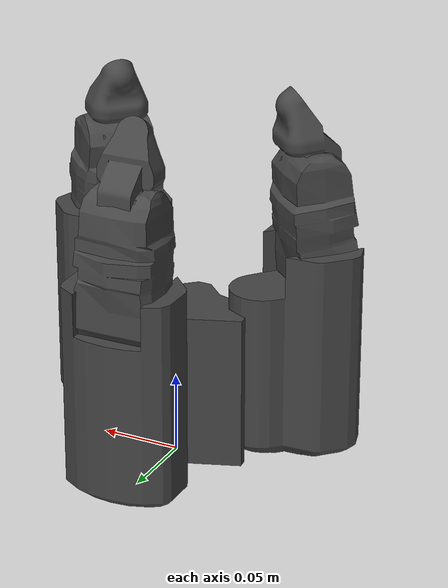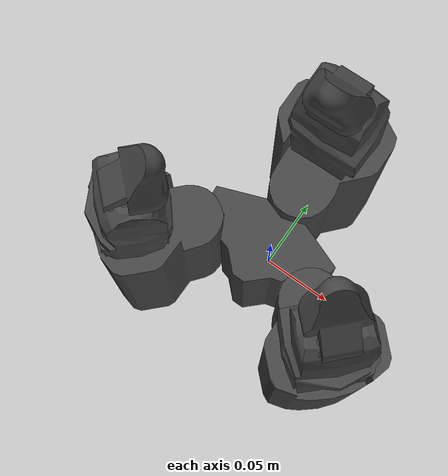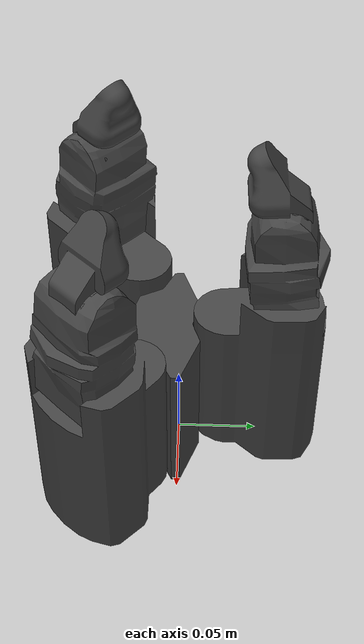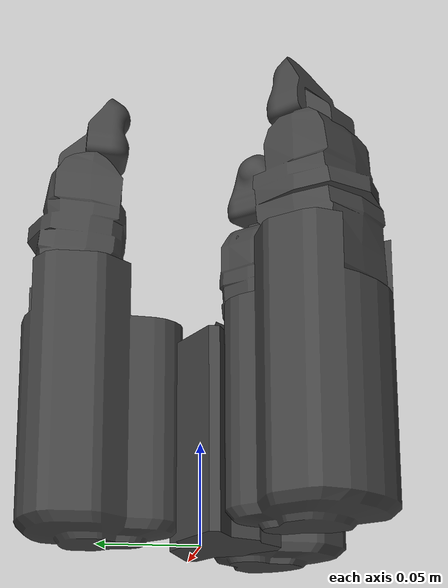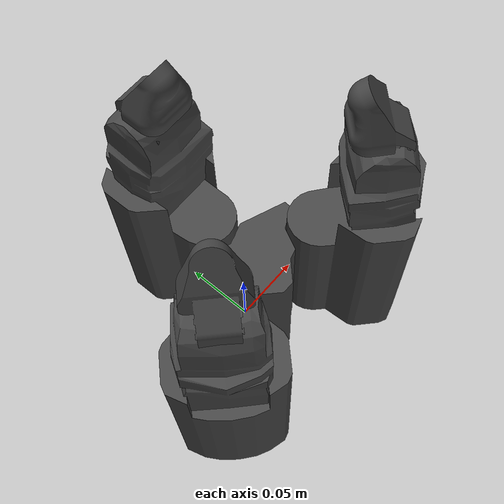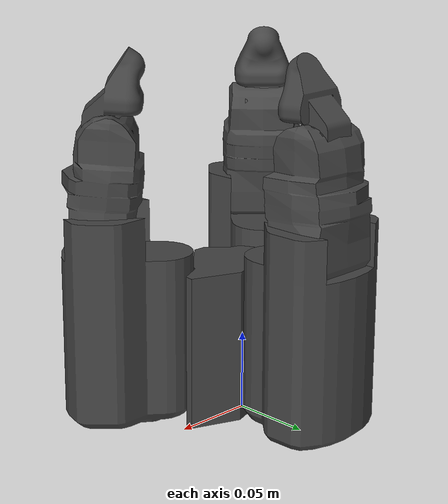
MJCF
<mujoco model="hand_H_v2">
    <compiler angle="radian" meshdir="meshes/visual/" texturedir="textures/" />
    <option impratio="20" tolerance="1e-10" iterations="10" />
    <size njmax="600" nconmax="150" nstack="300000" />
    <asset>
        <mesh name="palm_link_col" file="palm_link_col.stl" />
        <mesh name="finger_base_link_col" file="finger_base_link_col.stl" />
        <mesh name="finger_prox_link_col" file="finger_prox_link_col.stl" />
        <mesh name="finger_dist_link" file="finger_dist_link.stl" />
    </asset>
    <worldbody>
        <body name="H0_wrist_attach" pos="0 0 0">
            <inertial pos="0 0 0" mass="0" diaginertia="0 0 0" />
            <body name="H0_base_link" pos="0 0 -0.0005">
                <inertial pos="9.45256e-05 -0.00865108 0.0485" quat="0.707107 0 0 0.707107" mass="0.275316" diaginertia="0.0003223 0.000255715 0.000146273" />
                <geom type="mesh" rgba="0.267 0.267 0.267 1" mesh="palm_link_col" friction="1 0.05 0.01" condim="4" margin="0.0005" contype="1" conaffinity="1"/>
                <body name="H0_insert_F0" pos="-0.045 -0.025981 0" quat="0.382681 0 0 0.923881">
                    <inertial pos="-0.045 -0.025981 0" quat="0.382681 0 0 0.923881" mass="0" diaginertia="0 0 0" />
                    <body name="H0_F0_palm_link" pos="0 0 0">
                        <inertial pos="-0.00681802 -0.0094702 0.067588" quat="0.992601 0.0892342 0.0144943 -0.0810556" mass="0.095" diaginertia="2.7996e-05 2.73461e-05 9.27404e-06" />
                        <body name="H0_F0_base_link" pos="0 0 0.00016528" quat="0.999937 0 0 0.0112008">
                            <inertial pos="3.29175e-05 0.0257198 0.0640745" quat="0.999447 -0.032655 0.000557149 0.0061748" mass="0.482887" diaginertia="0.000750982 0.000728478 0.00032531" />
                            <joint name="H0_F0J0" pos="0 0 0" axis="0 0 1" limited="true" range="-0.785398 0.785398" damping="0.5" armature="0.005" margin="0.01" frictionloss="0.001"/>
                            <geom type="mesh" rgba="0.267 0.267 0.267 1" mesh="finger_base_link_col" friction="1 0.05 0.01" condim="4" margin="0.0005" contype="1" conaffinity="1"/>
                            <body name="H0_F0_link_1" pos="0 0.035 0.11683" quat="0.999375 0.0353401 0 0">
                                <inertial pos="0.000425187 -0.000367262 0.0278443" quat="0.731527 -0.00311774 -0.00402921 0.681793" mass="0.152927" diaginertia="0.000123742 0.000112273 4.66523e-05" />
                                <joint name="H0_F0J1" pos="0 0 0" axis="1 0 0" limited="true" range="-1.39626 1.0472" damping="0.5" armature="0.005" margin="0.01" frictionloss="0.001"/>
                                <geom type="mesh" rgba="0.267 0.267 0.267 1" mesh="finger_prox_link_col" friction="1 0.05 0.01" condim="4" margin="0.0005" contype="1" conaffinity="1"/>
                                <body name="H0_F0_link_2" pos="0 0 0.06" quat="0.999994 -0.00343244 0 0">
                                    <inertial pos="0.000301517 -0.00291034 0.0141289" quat="0.723859 0.0821098 -0.0893603 0.679192" mass="0.0438455" diaginertia="1.61269e-05 1.59969e-05 5.28892e-06" />
                                    <joint name="H0_F0J2" pos="0 0 0" axis="1 0 0" limited="true" range="-1.0472 1.39626" damping="0.5" armature="0.005" margin="0.01" frictionloss="0.001"/>
                                    <geom type="mesh" rgba="0.267 0.267 0.267 1" mesh="finger_dist_link" friction="1 0.05 0.01" condim="4" margin="0.0005" contype="1" conaffinity="1" />
                                    <body name="H0_F0_tip" pos="0 0 0">
                                        <inertial pos="0 0 0" mass="0" diaginertia="0 0 0" />
                                        <body name="H0_F0_optoforce" pos="0 -0.006 0.046" quat="0.984727 -0.174108 0 0">
                                            <inertial pos="0 -0.006 0.046" quat="0.984727 -0.174108 0 0" mass="0" diaginertia="0 0 0" />
                                        </body>
                                    </body>
                                </body>
                            </body>
                        </body>
                    </body>
                </body>
                <body name="H0_insert_F1" pos="0 0.029019 0">
                    <inertial pos="0 0.029019 0" mass="0" diaginertia="0 0 0" />
                    <body name="H0_F1_palm_link" pos="0 0 0">
                        <inertial pos="-0.00681802 -0.0094702 0.067588" quat="0.992601 0.0892342 0.0144943 -0.0810556" mass="0.095" diaginertia="2.7996e-05 2.73461e-05 9.27404e-06" />
                        <body name="H0_F1_base_link" pos="0 0 0.00016528" quat="0.999937 0 0 0.0112008">
                            <inertial pos="3.29175e-05 0.0257198 0.0640745" quat="0.999447 -0.032655 0.000557149 0.0061748" mass="0.482887" diaginertia="0.000750982 0.000728478 0.00032531" />
                            <joint name="H0_F1J0" pos="0 0 0" axis="0 0 1" limited="true" range="-0.785398 0.785398" damping="0.5" armature="0.005" margin="0.01" frictionloss="0.001"/>
                            <geom type="mesh" rgba="0.267 0.267 0.267 1" mesh="finger_base_link_col" friction="1 0.05 0.01" condim="4" margin="0.0005" contype="1" conaffinity="1"/>
                            <body name="H0_F1_link_1" pos="0 0.035 0.11683" quat="0.999375 0.0353401 0 0">
                                <inertial pos="0.000425187 -0.000367262 0.0278443" quat="0.731527 -0.00311774 -0.00402921 0.681793" mass="0.152927" diaginertia="0.000123742 0.000112273 4.66523e-05" />
                                <joint name="H0_F1J1" pos="0 0 0" axis="1 0 0" limited="true" range="-1.39626 1.0472" damping="0.5" armature="0.005" margin="0.01" frictionloss="0.001"/>
                                <geom type="mesh" rgba="0.267 0.267 0.267 1" mesh="finger_prox_link_col" friction="1 0.05 0.01" condim="4" margin="0.0005" contype="1" conaffinity="1"/>
                                <body name="H0_F1_link_2" pos="0 0 0.06" quat="0.999994 -0.00343244 0 0">
                                    <inertial pos="0.000301517 -0.00291034 0.0141289" quat="0.723859 0.0821098 -0.0893603 0.679192" mass="0.0438455" diaginertia="1.61269e-05 1.59969e-05 5.28892e-06" />
                                    <joint name="H0_F1J2" pos="0 0 0" axis="1 0 0" limited="true" range="-1.0472 1.39626" damping="0.5" armature="0.005" margin="0.01" frictionloss="0.001"/>
                                    <geom type="mesh" rgba="0.267 0.267 0.267 1" mesh="finger_dist_link" friction="1 0.05 0.01" condim="4" margin="0.0005" contype="1" conaffinity="1"/>
                                    <body name="H0_F1_tip" pos="0 0 0">
                                        <inertial pos="0 0 0" mass="0" diaginertia="0 0 0" />
                                        <body name="H0_F1_optoforce" pos="0 -0.006 0.046" quat="0.984727 -0.174108 0 0">
                                            <inertial pos="0 -0.006 0.046" quat="0.984727 -0.174108 0 0" mass="0" diaginertia="0 0 0" />
                                        </body>
                                    </body>
                                </body>
                            </body>
                        </body>
                    </body>
                </body>
                <body name="H0_insert_F2" pos="0.045 -0.025981 0" quat="0.382681 0 0 -0.923881">
                    <inertial pos="0.045 -0.025981 0" quat="0.382681 0 0 -0.923881" mass="0" diaginertia="0 0 0" />
                    <body name="H0_F2_palm_link" pos="0 0 0">
                        <inertial pos="-0.00681802 -0.0094702 0.067588" quat="0.992601 0.0892342 0.0144943 -0.0810556" mass="0.095" diaginertia="2.7996e-05 2.73461e-05 9.27404e-06" />
                        <body name="H0_F2_base_link" pos="0 0 0.00016528" quat="0.999937 0 0 0.0112008" friction="1 0.05 0.01" condim="4" margin="0.0005" contype="1" conaffinity="1">
                            <inertial pos="3.29175e-05 0.0257198 0.0640745" quat="0.999447 -0.032655 0.000557149 0.0061748" mass="0.482887" diaginertia="0.000750982 0.000728478 0.00032531" />
                            <joint name="H0_F2J0" pos="0 0 0" axis="0 0 1" limited="true" range="-0.785398 0.785398" damping="0.5" armature="0.005" margin="0.01" frictionloss="0.001"/>
                            <geom type="mesh" rgba="0.267 0.267 0.267 1" mesh="finger_base_link_col" friction="1 0.05 0.01" condim="4" margin="0.0005" contype="1" conaffinity="1"/>
                            <body name="H0_F2_link_1" pos="0 0.035 0.11683" quat="0.999375 0.0353401 0 0">
                                <inertial pos="0.000425187 -0.000367262 0.0278443" quat="0.731527 -0.00311774 -0.00402921 0.681793" mass="0.152927" diaginertia="0.000123742 0.000112273 4.66523e-05" />
                                <joint name="H0_F2J1" pos="0 0 0" axis="1 0 0" limited="true" range="-1.39626 1.0472" damping="0.5" armature="0.005" margin="0.01" frictionloss="0.001"/>
                                <geom type="mesh" rgba="0.267 0.267 0.267 1" mesh="finger_prox_link_col" friction="1 0.05 0.01" condim="4" margin="0.0005" contype="1" conaffinity="1"/>
                                <body name="H0_F2_link_2" pos="0 0 0.06" quat="0.999994 -0.00343244 0 0">
                                    <inertial pos="0.000301517 -0.00291034 0.0141289" quat="0.723859 0.0821098 -0.0893603 0.679192" mass="0.0438455" diaginertia="1.61269e-05 1.59969e-05 5.28892e-06" />
                                    <joint name="H0_F2J2" pos="0 0 0" axis="1 0 0" limited="true" range="-1.0472 1.39626" damping="0.5" armature="0.005" margin="0.01" frictionloss="0.001"/>
                                    <geom type="mesh" rgba="0.267 0.267 0.267 1" mesh="finger_dist_link" friction="1 0.05 0.01" condim="4" margin="0.0005" contype="1" conaffinity="1"/>
                                    <body name="H0_F2_tip" pos="0 0 0">
                                        <inertial pos="0 0 0" mass="0" diaginertia="0 0 0" />
                                        <body name="H0_F2_optoforce" pos="0 -0.006 0.046" quat="0.984727 -0.174108 0 0">
                                            <inertial pos="0 -0.006 0.046" quat="0.984727 -0.174108 0 0" mass="0" diaginertia="0 0 0" />
                                        </body>
                                    </body>
                                </body>
                            </body>
                        </body>
                    </body>
                </body>
                <body name="fh_manipulator" pos="0 0 0.1">
                    <inertial pos="0 0 0.1" mass="0" diaginertia="0 0 0" />
                </body>
            </body>
        </body>
    </worldbody>
    <keyframe>
        <key time="30" qpos="0 0 0 0 0 0 0 0 0" />
    </keyframe>
</mujoco>
